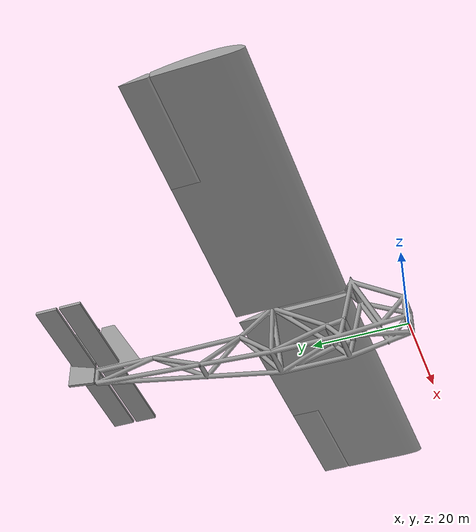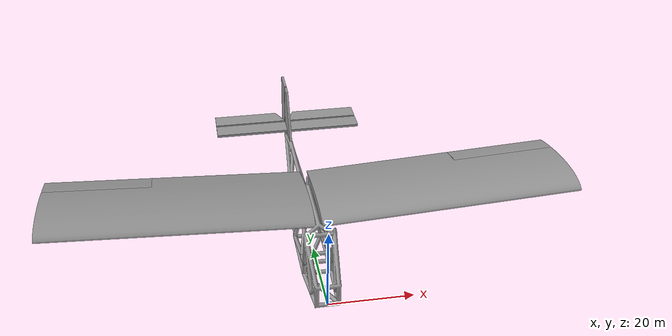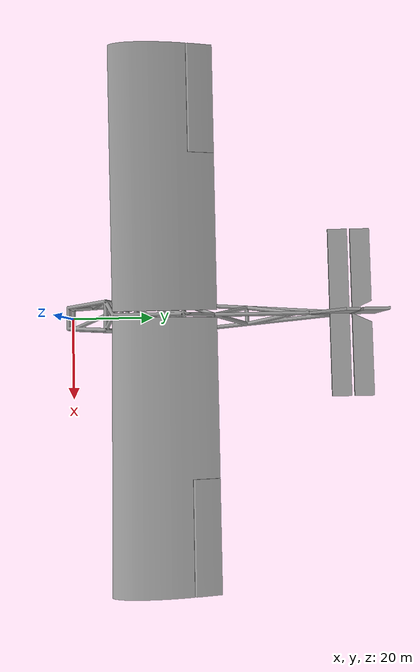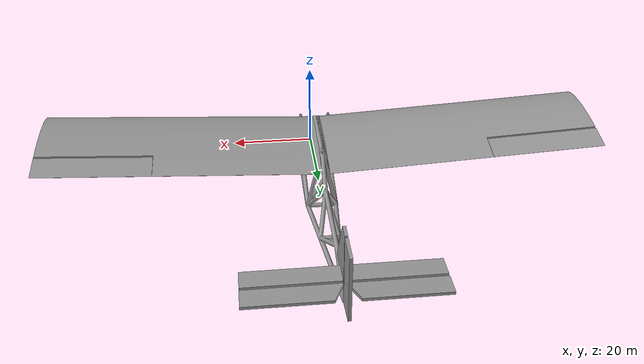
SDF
<?xml version='1.0'?>
<sdf version='1.7'>
  <model name='subscale_model'>
    <link name='fuselage'>
    <!--Clean up in future-->
      <inertial>
        <mass>2</mass>
        <inertia>
          <ixx>0.166667</ixx>
          <ixy>0</ixy>
          <ixz>0</ixz>
          <iyy>0.166667</iyy>
          <iyz>0</iyz>
          <izz>0.166667</izz>
        </inertia>
        <pose>0 0 0 0 -0 0</pose>
      </inertial>
      <pose>0.010625 -0.006549 0 0 -0 0</pose>
      <gravity>0</gravity>
      <self_collide>0</self_collide>
      <kinematic>0</kinematic>
      <enable_wind>0</enable_wind>
      <visual name='visual'>
        <pose>0 0 0 0 -0 0</pose>
        <geometry>
          <mesh>
            <uri>/home/harish/Downloads/FCA-Simulation-main/Stls/Fuselage (1).stl</uri>
            <scale>1 1 1</scale>
          </mesh>
        </geometry>
        <material>
          <lighting>1</lighting>
          <script>
            <uri>file://media/materials/scripts/gazebo.material</uri>
            <name>Gazebo/Grey</name>
          </script>
          <shader type='pixel'>
            <normal_map>__default__</normal_map>
          </shader>
          <ambient>0.3 0.3 0.3 1</ambient>
          <diffuse>0.7 0.7 0.7 1</diffuse>
          <specular>0.01 0.01 0.01 1</specular>.
          <emissive>0 0 0 1</emissive>
        </material>
        <transparency>0</transparency>
        <cast_shadows>1</cast_shadows>
      </visual>
      <collision name='collision'>
        <laser_retro>0</laser_retro>
        <max_contacts>10</max_contacts>
        <pose>0 0 0 0 -0 0</pose>
        <geometry>
          <mesh>
            <uri>/home/harish/Downloads/FCA-Simulation-main/Stls/Fuselage (1).stl</uri>
            <scale>1 1 1</scale>
          </mesh>
        </geometry>
        <surface>
          <friction>
            <ode>
              <mu>1</mu>
              <mu2>1</mu2>
              <fdir1>0 0 0</fdir1>
              <slip1>0</slip1>
              <slip2>0</slip2>
            </ode>
            <torsional>
              <coefficient>1</coefficient>
              <patch_radius>0</patch_radius>
              <surface_radius>0</surface_radius>
              <use_patch_radius>1</use_patch_radius>
              <ode>
                <slip>0</slip>
              </ode>
            </torsional>
          </friction>
          <bounce>
            <restitution_coefficient>0</restitution_coefficient>
            <threshold>1e+06</threshold>
          </bounce>
          <contact>
            <collide_without_contact>0</collide_without_contact>
            <collide_without_contact_bitmask>1</collide_without_contact_bitmask>
            <collide_bitmask>1</collide_bitmask>
            <ode>
              <soft_cfm>0</soft_cfm>
              <soft_erp>0.2</soft_erp>
              <kp>1e+13</kp>
              <kd>1</kd>
              <max_vel>0.01</max_vel>
              <min_depth>0</min_depth>
            </ode>
            <bullet>
              <split_impulse>1</split_impulse>
              <split_impulse_penetration_threshold>-0.01</split_impulse_penetration_threshold>
              <soft_cfm>0</soft_cfm>
              <soft_erp>0.2</soft_erp>
              <kp>1e+13</kp>
              <kd>1</kd>
            </bullet>
          </contact>
        </surface>
      </collision>
    </link>
    <link name='link_1'>
      <inertial>
        <mass>1</mass>
        <inertia>
          <ixx>0.166667</ixx>
          <ixy>0</ixy>
          <ixz>0</ixz>
          <iyy>0.166667</iyy>
          <iyz>0</iyz>
          <izz>0.166667</izz>
        </inertia>
      </inertial>
      <pose>-0.005356 0.001629 0 0 -0 0</pose>
      <visual name='visual'>
        <pose>0 0 0 0 -0 0</pose>
        <geometry>
          <mesh>
            <uri>/home/harish/Downloads/FCA-Simulation-main/Stls/Fuselage 1.stl</uri>
            <scale>1 1 1</scale>
          </mesh>
        </geometry>
        <material>
          <lighting>1</lighting>
          <script>
            <uri>file://media/materials/scripts/gazebo.material</uri>
            <name>Gazebo/Grey</name>
          </script>
          <shader type='pixel'/>
        </material>
        <transparency>0</transparency>
        <cast_shadows>1</cast_shadows>
      </visual>
      <collision name='collision'>
        <laser_retro>0</laser_retro>
        <max_contacts>10</max_contacts>
        <pose>0 0 0 0 -0 0</pose>
        <geometry>
          <mesh>
            <uri>/home/harish/Downloads/FCA-Simulation-main/Stls/Fuselage 1.stl</uri>
            <scale>1 1 1</scale>
          </mesh>
        </geometry>
        <surface>
          <friction>
            <ode>
              <mu>1</mu>
              <mu2>1</mu2>
              <fdir1>0 0 0</fdir1>
              <slip1>0</slip1>
              <slip2>0</slip2>
            </ode>
            <torsional>
              <coefficient>1</coefficient>
              <patch_radius>0</patch_radius>
              <surface_radius>0</surface_radius>
              <use_patch_radius>1</use_patch_radius>
              <ode>
                <slip>0</slip>
              </ode>
            </torsional>
          </friction>
          <bounce>
            <restitution_coefficient>0</restitution_coefficient>
            <threshold>1e+06</threshold>
          </bounce>
          <contact>
            <collide_without_contact>0</collide_without_contact>
            <collide_without_contact_bitmask>1</collide_without_contact_bitmask>
            <collide_bitmask>1</collide_bitmask>
            <ode>
              <soft_cfm>0</soft_cfm>
              <soft_erp>0.2</soft_erp>
              <kp>1e+13</kp>
              <kd>1</kd>
              <max_vel>0.01</max_vel>
              <min_depth>0</min_depth>
            </ode>
            <bullet>
              <split_impulse>1</split_impulse>
              <split_impulse_penetration_threshold>-0.01</split_impulse_penetration_threshold>
              <soft_cfm>0</soft_cfm>
              <soft_erp>0.2</soft_erp>
              <kp>1e+13</kp>
              <kd>1</kd>
            </bullet>
          </contact>
        </surface>
      </collision>
    </link>
    <link name='stabilizers'>
      <inertial>
        <mass>1</mass>
        <inertia>
          <ixx>0.166667</ixx>
          <ixy>0</ixy>
          <ixz>0</ixz>
          <iyy>0.166667</iyy>
          <iyz>0</iyz>
          <izz>0.166667</izz>
        </inertia>
      </inertial>
      <pose>-0.007465 -0.001724 0 0 -0 0</pose>
      <visual name='visual'>
        <pose>0 0 0 0 -0 0</pose>
        <geometry>
          <mesh>
            <uri>/home/harish/Downloads/FCA-Simulation-main/Stls/Stabalizers.stl</uri>
            <scale>1 1 1</scale>
          </mesh>
        </geometry>
        <material>
          <lighting>1</lighting>
          <script>
            <uri>file://media/materials/scripts/gazebo.material</uri>
            <name>Gazebo/Grey</name>
          </script>
          <shader type='pixel'/>
        </material>
        <transparency>0</transparency>
        <cast_shadows>1</cast_shadows>
      </visual>
      <collision name='collision'>
        <laser_retro>0</laser_retro>
        <max_contacts>10</max_contacts>
        <pose>0 0 0 0 -0 0</pose>
        <geometry>
          <mesh>
            <uri>/home/harish/Downloads/FCA-Simulation-main/Stls/Stabalizers.stl</uri>
            <scale>1 1 1</scale>
          </mesh>
        </geometry>
        <surface>
          <friction>
            <ode>
              <mu>1</mu>
              <mu2>1</mu2>
              <fdir1>0 0 0</fdir1>
              <slip1>0</slip1>
              <slip2>0</slip2>
            </ode>
            <torsional>
              <coefficient>1</coefficient>
              <patch_radius>0</patch_radius>
              <surface_radius>0</surface_radius>
              <use_patch_radius>1</use_patch_radius>
              <ode>
                <slip>0</slip>
              </ode>
            </torsional>
          </friction>
          <bounce>
            <restitution_coefficient>0</restitution_coefficient>
            <threshold>1e+06</threshold>
          </bounce>
          <contact>
            <collide_without_contact>0</collide_without_contact>
            <collide_without_contact_bitmask>1</collide_without_contact_bitmask>
            <collide_bitmask>1</collide_bitmask>
            <ode>
              <soft_cfm>0</soft_cfm>
              <soft_erp>0.2</soft_erp>
              <kp>1e+13</kp>
              <kd>1</kd>
              <max_vel>0.01</max_vel>
              <min_depth>0</min_depth>
            </ode>
            <bullet>
              <split_impulse>1</split_impulse>
              <split_impulse_penetration_threshold>-0.01</split_impulse_penetration_threshold>
              <soft_cfm>0</soft_cfm>
              <soft_erp>0.2</soft_erp>
              <kp>1e+13</kp>
              <kd>1</kd>
            </bullet>
          </contact>
        </surface>
      </collision>
    </link>
    <link name='link_2'>
      <inertial>
        <mass>1</mass>
        <inertia>
          <ixx>0.166667</ixx>
          <ixy>0</ixy>
          <ixz>0</ixz>
          <iyy>0.166667</iyy>
          <iyz>0</iyz>
          <izz>0.166667</izz>
        </inertia>
      </inertial>
      <pose>0.014581 -0.002539 0 0 -0 0</pose>
      <visual name='visual'>
        <pose>0 0 0 0 -0 0</pose>
        <geometry>
          <mesh>
            <uri>/home/harish/Downloads/FCA-Simulation-main/Stls/Fuselage 2.stl</uri>
            <scale>1 1 1</scale>
          </mesh>
        </geometry>
        <material>
          <lighting>1</lighting>
          <script>
            <uri>file://media/materials/scripts/gazebo.material</uri>
            <name>Gazebo/Grey</name>
          </script>
          <shader type='pixel'/>
        </material>
        <transparency>0</transparency>
        <cast_shadows>1</cast_shadows>
      </visual>
      <collision name='collision'>
        <laser_retro>0</laser_retro>
        <max_contacts>10</max_contacts>
        <pose>0 0 0 0 -0 0</pose>
        <geometry>
          <mesh>
            <uri>/home/harish/Downloads/FCA-Simulation-main/Stls/Fuselage 2.stl</uri>
            <scale>1 1 1</scale>
          </mesh>
        </geometry>
        <surface>
          <friction>
            <ode>
              <mu>1</mu>
              <mu2>1</mu2>
              <fdir1>0 0 0</fdir1>
              <slip1>0</slip1>
              <slip2>0</slip2>
            </ode>
            <torsional>
              <coefficient>1</coefficient>
              <patch_radius>0</patch_radius>
              <surface_radius>0</surface_radius>
              <use_patch_radius>1</use_patch_radius>
              <ode>
                <slip>0</slip>
              </ode>
            </torsional>
          </friction>
          <bounce>
            <restitution_coefficient>0</restitution_coefficient>
            <threshold>1e+06</threshold>
          </bounce>
          <contact>
            <collide_without_contact>0</collide_without_contact>
            <collide_without_contact_bitmask>1</collide_without_contact_bitmask>
            <collide_bitmask>1</collide_bitmask>
            <ode>
              <soft_cfm>0</soft_cfm>
              <soft_erp>0.2</soft_erp>
              <kp>1e+13</kp>
              <kd>1</kd>
              <max_vel>0.01</max_vel>
              <min_depth>0</min_depth>
            </ode>0
            <bullet>
              <split_impulse>1</split_impulse>
              <split_impulse_penetration_threshold>-0.01</split_impulse_penetration_threshold>
              <soft_cfm>0</soft_cfm>
              <soft_erp>0.2</soft_erp>
              <kp>1e+13</kp>
              <kd>1</kd>
            </bullet>
          </contact>
        </surface>
      </collision>
    </link>
    <link name='left_aileron'>
      <inertial>
        <mass>1</mass>
        <inertia>
          <ixx>0.166667</ixx>
          <ixy>0</ixy>
          <ixz>0</ixz>
          <iyy>0.166667</iyy>
          <iyz>0</iyz>
          <izz>0.166667</izz>
        </inertia>
      </inertial>
      <pose>0.001717 0.004642 0 0 -0 0</pose>
      <visual name='visual'>
        <pose>0 0 0 0 -0 0</pose>
        <geometry>
          <mesh>
            <uri>/home/harish/Downloads/FCA-Simulation-main/Stls/Left Aileron.stl</uri>
            <scale>1 1 1</scale>
          </mesh>
        </geometry>
        <material>
          <lighting>1</lighting>
          <script>
            <uri>file://media/materials/scripts/gazebo.material</uri>
            <name>Gazebo/Grey</name>
          </script>
          <shader type='pixel'/>
        </material>
        <transparency>0</transparency>
        <cast_shadows>1</cast_shadows>
      </visual>
      <collision name='collision'>
        <laser_retro>0</laser_retro>
        <max_contacts>10</max_contacts>
        <pose>0 0 0 0 -0 0</pose>
        <geometry>
          <mesh>
            <uri>/home/harish/Downloads/FCA-Simulation-main/Stls/Left Aileron.stl</uri>
            <scale>1 1 1</scale>
          </mesh>
        </geometry>
        <surface>
          <friction>
            <ode>
              <mu>1</mu>
              <mu2>1</mu2>
              <fdir1>0 0 0</fdir1>
              <slip1>0</slip1>
              <slip2>0</slip2>
            </ode>
            <torsional>
              <coefficient>1</coefficient>
              <patch_radius>0</patch_radius>
              <surface_radius>0</surface_radius>
              <use_patch_radius>1</use_patch_radius>
              <ode>
                <slip>0</slip>
              </ode>
            </torsional>
          </friction>
          <bounce>
            <restitution_coefficient>0</restitution_coefficient>
            <threshold>1e+06</threshold>
          </bounce>
          <contact>
            <collide_without_contact>0</collide_without_contact>
            <collide_without_contact_bitmask>1</collide_without_contact_bitmask>
            <collide_bitmask>1</collide_bitmask>
            <ode>
              <soft_cfm>0</soft_cfm>
              <soft_erp>0.2</soft_erp>
              <kp>1e+13</kp>
              <kd>1</kd>
              <max_vel>0.01</max_vel>
              <min_depth>0</min_depth>
            </ode>
            <bullet>
              <split_impulse>1</split_impulse>
              <split_impulse_penetration_threshold>-0.01</split_impulse_penetration_threshold>
              <soft_cfm>0</soft_cfm>
              <soft_erp>0.2</soft_erp>
              <kp>1e+13</kp>
              <kd>1</kd>
            </bullet>
          </contact>
        </surface>
      </collision>
    </link>
    <link name='left_elevator'>
      <inertial>
        <mass>1</mass>
        <inertia>
          <ixx>0.166667</ixx>
          <ixy>0</ixy>
          <ixz>0</ixz>
          <iyy>0.166667</iyy>
          <iyz>0</iyz>
          <izz>0.166667</izz>
        </inertia>
      </inertial>
      <pose>-0.011106 0.004567 0 0 -0 0</pose>
      <visual name='visual'>
        <pose>0 0 0 0 -0 0</pose>
        <geometry>
          <mesh>
            <uri>/home/harish/Downloads/FCA-Simulation-main/Stls/Left Elevator.stl</uri>
            <scale>1 1 1</scale>
          </mesh>
        </geometry>
        <material>
          <lighting>1</lighting>
          <script>
            <uri>file://media/materials/scripts/gazebo.material</uri>
            <name>Gazebo/Grey</name>
          </script>
          <shader type='pixel'/>
        </material>
        <transparency>0</transparency>
        <cast_shadows>1</cast_shadows>
      </visual>
      <collision name='collision'>
        <laser_retro>0</laser_retro>
        <max_contacts>10</max_contacts>
        <pose>0 0 0 0 -0 0</pose>
        <geometry>
          <mesh>
            <uri>/home/harish/Downloads/FCA-Simulation-main/Stls/Left Elevator.stl</uri>
            <scale>1 1 1</scale>
          </mesh>
        </geometry>
        <surface>
          <friction>
            <ode>
              <mu>1</mu>
              <mu2>1</mu2>
              <fdir1>0 0 0</fdir1>
              <slip1>0</slip1>
              <slip2>0</slip2>
            </ode>
            <torsional>
              <coefficient>1</coefficient>
              <patch_radius>0</patch_radius>
              <surface_radius>0</surface_radius>
              <use_patch_radius>1</use_patch_radius>
              <ode>
                <slip>0</slip>
              </ode>
            </torsional>
          </friction>
          <bounce>
            <restitution_coefficient>0</restitution_coefficient>
            <threshold>1e+06</threshold>
          </bounce>
          <contact>
            <collide_without_contact>0</collide_without_contact>
            <collide_without_contact_bitmask>1</collide_without_contact_bitmask>
            <collide_bitmask>1</collide_bitmask>
            <ode>
              <soft_cfm>0</soft_cfm>
              <soft_erp>0.2</soft_erp>
              <kp>1e+13</kp>
              <kd>1</kd>
              <max_vel>0.01</max_vel>
              <min_depth>0</min_depth>
            </ode>
            <bullet>
              <split_impulse>1</split_impulse>
              <split_impulse_penetration_threshold>-0.01</split_impulse_penetration_threshold>
              <soft_cfm>0</soft_cfm>
              <soft_erp>0.2</soft_erp>
              <kp>1e+13</kp>
              <kd>1</kd>
            </bullet>
          </contact>
        </surface>
      </collision>
    </link>
    <link name='left_wing'>
      <inertial>
        <mass>1</mass>
        <inertia>
          <ixx>0.166667</ixx>
          <ixy>0</ixy>
          <ixz>0</ixz>
          <iyy>0.166667</iyy>
          <iyz>0</iyz>
          <izz>0.166667</izz>
        </inertia>
      </inertial>
      <pose>-0.002431 0.000506 0 0 -0 0</pose>
      <visual name='visual'>
        <pose>0 0 0 0 -0 0</pose>
        <geometry>
          <mesh>
            <uri>/home/harish/Downloads/FCA-Simulation-main/Stls/Left Wing.stl</uri>
            <scale>1 1 1</scale>
          </mesh>
        </geometry>
        <material>
          <lighting>1</lighting>
          <script>
            <uri>file://media/materials/scripts/gazebo.material</uri>
            <name>Gazebo/Grey</name>
          </script>
          <shader type='pixel'/>
        </material>
        <transparency>0</transparency>
        <cast_shadows>1</cast_shadows>
      </visual>
      <collision name='collision'>
        <laser_retro>0</laser_retro>
        <max_contacts>10</max_contacts>
        <pose>0 0 0 0 -0 0</pose>
        <geometry>
          <mesh>
            <uri>/home/harish/Downloads/FCA-Simulation-main/Stls/Left Wing.stl</uri>
            <scale>1 1 1</scale>
          </mesh>
        </geometry>
        <surface>
          <friction>
            <ode>
              <mu>1</mu>
              <mu2>1</mu2>
              <fdir1>0 0 0</fdir1>
              <slip1>0</slip1>
              <slip2>0</slip2>
            </ode>
            <torsional>
              <coefficient>1</coefficient>
              <patch_radius>0</patch_radius>
              <surface_radius>0</surface_radius>
              <use_patch_radius>1</use_patch_radius>
              <ode>
                <slip>0</slip>
              </ode>
            </torsional>
          </friction>
          <bounce>
            <restitution_coefficient>0</restitution_coefficient>
            <threshold>1e+06</threshold>
          </bounce>
          <contact>
            <collide_without_contact>0</collide_without_contact>
            <collide_without_contact_bitmask>1</collide_without_contact_bitmask>
            <collide_bitmask>1</collide_bitmask>
            <ode>
              <soft_cfm>0</soft_cfm>
              <soft_erp>0.2</soft_erp>
              <kp>1e+13</kp>
              <kd>1</kd>
              <max_vel>0.01</max_vel>
              <min_depth>0</min_depth>
            </ode>
            <bullet>
              <split_impulse>1</split_impulse>
              <split_impulse_penetration_threshold>-0.01</split_impulse_penetration_threshold>
              <soft_cfm>0</soft_cfm>
              <soft_erp>0.2</soft_erp>
              <kp>1e+13</kp>
              <kd>1</kd>
            </bullet>
          </contact>
        </surface>
      </collision>
    </link>
    <link name='right_aileron'>
      <inertial>
        <mass>1</mass>
        <inertia>
          <ixx>0.166667</ixx>
          <ixy>0</ixy>
          <ixz>0</ixz>
          <iyy>0.166667</iyy>
          <iyz>0</iyz>
          <izz>0.166667</izz>
        </inertia>
      </inertial>
      <pose>-0.000807 -0.000738 0 0 -0 0</pose>
      <visual name='visual'>
        <pose>0 0 0 0 -0 0</pose>
        <geometry>
          <mesh>
            <uri>/home/harish/Downloads/FCA-Simulation-main/Stls/Right Aileron.stl</uri>
            <scale>1 1 1</scale>
          </mesh>
        </geometry>
        <material>
          <lighting>1</lighting>
          <script>
            <uri>file://media/materials/scripts/gazebo.material</uri>
            <name>Gazebo/Grey</name>
          </script>
          <shader type='pixel'/>
        </material>
        <transparency>0</transparency>
        <cast_shadows>1</cast_shadows>
      </visual>
      <collision name='collision'>
        <laser_retro>0</laser_retro>
        <max_contacts>10</max_contacts>
        <pose>0 0 0 0 -0 0</pose>
        <geometry>
          <mesh>
            <uri>/home/harish/Downloads/FCA-Simulation-main/Stls/Right Aileron.stl</uri>
            <scale>1 1 1</scale>
          </mesh>
        </geometry>
        <surface>
          <friction>
            <ode>0.
              <mu>1</mu>
              <mu2>1</mu2>
              <fdir1>0 0 0</fdir1>0
              <slip1>0</slip1>
              <slip2>0</slip2>
            </ode>
            <torsional>
              <coefficient>1</coefficient>
              <patch_radius>0</patch_radius>
              <surface_radius>0</surface_radius>
              <use_patch_radius>1</use_patch_radius>
              <ode>
                <slip>0</slip>
              </ode>
            </torsional>
          </friction>
          <bounce>
            <restitution_coefficient>0</restitution_coefficient>
            <threshold>1e+06</threshold>
          </bounce>
          <contact>
            <collide_without_contact>0</collide_without_contact>
            <collide_without_contact_bitmask>1</collide_without_contact_bitmask>
            <collide_bitmask>1</collide_bitmask>
            <ode>
              <soft_cfm>0</soft_cfm>
              <soft_erp>0.2</soft_erp>
              <kp>1e+13</kp>
              <kd>1</kd>
              <max_vel>0.01</max_vel>
              <min_depth>0</min_depth>
            </ode>
            <bullet>
              <split_impulse>1</split_impulse>
              <split_impulse_penetration_threshold>-0.01</split_impulse_penetration_threshold>
              <soft_cfm>0</soft_cfm>
              <soft_erp>0.2</soft_erp>
              <kp>1e+13</kp>
              <kd>1</kd>
            </bullet>
          </contact>
        </surface>
      </collision>
    </link>
    <link name='right_elevator'>
      <inertial>
        <mass>1</mass>
        <inertia>
          <ixx>0.166667</ixx>
          <ixy>0</ixy>
          <ixz>0</ixz>
          <iyy>0.166667</iyy>
          <iyz>0</iyz>
          <izz>0.166667</izz>
        </inertia>
      </inertial>
      <pose>-0.005405 -0.001289 0 0 -0 0</pose>
      <visual name='visual'>
        <pose>0 0 0 0 -0 0</pose>
        <geometry>
          <mesh>
            <uri>/home/harish/Downloads/FCA-Simulation-main/Stls/Right Elevator.stl</uri>
            <scale>1 1 1</scale>
          </mesh>
        </geometry>
        <material>
          <lighting>1</lighting>
          <script>
            <uri>file://media/materials/scripts/gazebo.material</uri>
            <name>Gazebo/Grey</name>
          </script>
          <shader type='pixel'/>
        </material>
        <transparency>0</transparency>
        <cast_shadows>1</cast_shadows>
      </visual>
      <collision name='collision'>
        <laser_retro>0</laser_retro>
        <max_contacts>10</max_contacts>
        <pose>0 0 0 0 -0 0</pose>
        <geometry>
          <mesh>
            <uri>/home/harish/Downloads/FCA-Simulation-main/Stls/Right Elevator.stl</uri>
            <scale>1 1 1</scale>
          </mesh>
        </geometry>
        <surface>
          <friction>
            <ode>
              <mu>1</mu>
              <mu2>1</mu2>
              <fdir1>0 0 0</fdir1>
              <slip1>0</slip1>
              <slip2>0</slip2>
            </ode>
            <torsional>
              <coefficient>1</coefficient>
              <patch_radius>0</patch_radius>
              <surface_radius>0</surface_radius>
              <use_patch_radius>1</use_patch_radius>
              <ode>
                <slip>0</slip>
              </ode>
            </torsional>
          </friction>
          <bounce>
            <restitution_coefficient>0</restitution_coefficient>
            <threshold>1e+06</threshold>
          </bounce>
          <contact>
            <collide_without_contact>0</collide_without_contact>
            <collide_without_contact_bitmask>1</collide_without_contact_bitmask>
            <collide_bitmask>1</collide_bitmask>
            <ode>
              <soft_cfm>0</soft_cfm>
              <soft_erp>0.2</soft_erp>
              <kp>1e+13</kp>
              <kd>1</kd>
              <max_vel>0.01</max_vel>
              <min_depth>0</min_depth>
            </ode>
            <bullet>
              <split_impulse>1</split_impulse>
              <split_impulse_penetration_threshold>-0.01</split_impulse_penetration_threshold>
              <soft_cfm>0</soft_cfm>
              <soft_erp>0.2</soft_erp>
              <kp>1e+13</kp>
              <kd>1</kd>
            </bullet>
          </contact>
        </surface>
      </collision>
    </link>
    <link name='right_wing'>
      <inertial>
        <mass>1</mass>
        <inertia>
          <ixx>0.166667</ixx>
          <ixy>0</ixy>
          <ixz>0</ixz>
          <iyy>0.166667</iyy>
          <iyz>0</iyz>
          <izz>0.166667</izz>
        </inertia>
      </inertial>
      <pose>-0.009494 0.005806 0 0 -0 0</pose>
      <visual name='visual'>
        <pose>0 0 0 0 -0 0</pose>
        <geometry>
          <mesh>
            <uri>/home/harish/Downloads/FCA-Simulation-main/Stls/Right Wing.stl</uri>
            <scale>1 1 1</scale>
          </mesh>
        </geometry>
        <material>
          <lighting>1</lighting>
          <script>
            <uri>file://media/materials/scripts/gazebo.material</uri>
            <name>Gazebo/Grey</name>
          </script>
          <shader type='pixel'/>
        </material>
        <transparency>0</transparency>
        <cast_shadows>1</cast_shadows>
      </visual>
      <collision name='collision'>
        <laser_retro>0</laser_retro>
        <max_contacts>10</max_contacts>
        <pose>0 0 0 0 -0 0</pose>
        <geometry>
          <mesh>
            <uri>/home/harish/Downloads/FCA-Simulation-main/Stls/Right Wing.stl</uri>
            <scale>1 1 1</scale>
          </mesh>
        </geometry>
        <surface>
          <friction>
            <ode>
              <mu>1</mu>
              <mu2>1</mu2>
              <fdir1>0 0 0</fdir1>
              <slip1>0</slip1>
              <slip2>0</slip2>
            </ode>
            <torsional>
              <coefficient>1</coefficient>
              <patch_radius>0</patch_radius>
              <surface_radius>0</surface_radius>
              <use_patch_radius>1</use_patch_radius>
              <ode>
                <slip>0</slip>
              </ode>
            </torsional>
          </friction>
          <bounce>
            <restitution_coefficient>0</restitution_coefficient>
            <threshold>1e+06</threshold>
          </bounce>
          <contact>
            <collide_without_contact>0</collide_without_contact>
            <collide_without_contact_bitmask>1</collide_without_contact_bitmask>
            <collide_bitmask>1</collide_bitmask>
            <ode>
              <soft_cfm>0</soft_cfm>
              <soft_erp>0.2</soft_erp>
              <kp>1e+13</kp>
              <kd>1</kd>
              <max_vel>0.01</max_vel>
              <min_depth>0</min_depth>
            </ode>
            <bullet>
              <split_impulse>1</split_impulse>
              <split_impulse_penetration_threshold>-0.01</split_impulse_penetration_threshold>
              <soft_cfm>0</soft_cfm>
              <soft_erp>0.2</soft_erp>
              <kp>1e+13</kp>
              <kd>1</kd>
            </bullet>
          </contact>
        </surface>
      </collision>
    </link>
    <link name='rudder'>
      <inertial>
        <mass>1</mass>
        <inertia>
          <ixx>0.166667</ixx>
          <ixy>0</ixy>
          <ixz>0</ixz>
          <iyy>0.166667</iyy>
          <iyz>0</iyz>
          <izz>0.166667</izz>
        </inertia>
      </inertial>
      <pose>0.015142 -0.00431 0 0 -0 0</pose>
      <visual name='visual'>
        <pose>0 0 0 0 -0 0</pose>
        <geometry>
          <mesh>
            <uri>/home/harish/Downloads/FCA-Simulation-main/Stls/Rudder.stl</uri>
            <scale>1 1 1</scale>
          </mesh>
        </geometry>
        <material>
          <lighting>1</lighting>
          <script>
            <uri>file://media/materials/scripts/gazebo.material</uri>
            <name>Gazebo/Grey</name>
          </script>
          <shader type='pixel'/>
        </material>
        <transparency>0</transparency>00
        <cast_shadows>1</cast_shadows>
      </visual>
      <collision name='collision'>
        <laser_retro>0</laser_retro>
        <max_contacts>10</max_contacts>
        <pose>0 0 0 0 -0 0</pose>
        <geometry>
          <mesh>
            <uri>/home/harish/Downloads/FCA-Simulation-main/Stls/Rudder.stl</uri>
            <scale>1 1 1</scale>
          </mesh>
        </geometry>
        <surface>
          <friction>
            <ode>
              <mu>1</mu>
              <mu2>1</mu2>
              <fdir1>0 0 0</fdir1>
              <slip1>0</slip1>
              <slip2>0</slip2>
            </ode>
            <torsional>
              <coefficient>1</coefficient>
              <patch_radius>0</patch_radius>
              <surface_radius>0</surface_radius>
              <use_patch_radius>1</use_patch_radius>
              <ode>
                <slip>0</slip>
              </ode>
            </torsional>
          </friction>
          <bounce>
            <restitution_coefficient>0</restitution_coefficient>
            <threshold>1e+06</threshold>
          </bounce>
          <contact>
            <collide_without_contact>0</collide_without_contact>
            <collide_without_contact_bitmask>1</collide_without_contact_bitmask>
            <collide_bitmask>1</collide_bitmask>
            <ode>
              <soft_cfm>0</soft_cfm>
              <soft_erp>0.2</soft_erp>
              <kp>1e+13</kp>
              <kd>1</kd>
              <max_vel>0.01</max_vel>
              <min_depth>0</min_depth>
            </ode>
            <bullet>
              <split_impulse>1</split_impulse>
              <split_impulse_penetration_threshold>-0.01</split_impulse_penetration_threshold>
              <soft_cfm>0</soft_cfm>
              <soft_erp>0.2</soft_erp>
              <kp>1e+13</kp>
              <kd>1</kd>
            </bullet>
          </contact>
        </surface>
      </collision>
    </link>

    <!--Joint for Left Aileron-->
    <joint name='left_aileron_joint' type = 'revolute'>
      <parent>left_wing</parent>
      <child>left_aileron</child>
      <pose>0.001717 0.004642 0 0 -0 0</pose> <!--TODO-->
      <axis>
        <xyz>0 1 0</xyz>
        <limit>
          <lower>-0.26</lower>
          <upper>0.35</upper>
          <velocity>1</velocity> <!--Max velocity/effort? Also is effort similar to torqe or-->
          <effort>1</effort>
        </limit>
      </axis>
    </joint>

    <!--Joint for Right Aileron-->
    <joint name='right_aileron_joint' type = 'revolute'>
      <parent>right_wing</parent>
      <child>right_aileron</child>
      <pose>-0.000807 -0.000738 0 0 -0 0</pose> <!--TODO-->
      <axis>
        <xyz>0 1 0</xyz>
        <limit>
          <lower>-0.26</lower>
          <upper>0.35</upper>
          <velocity>1</velocity>
          <effort>1</effort>
        </limit>
      </axis>
    </joint>

    <!--Joint for Right Elevator-->
    <joint name='right_elevator_joint' type = 'revolute'>
      <parent>stabilizers</parent>
      <child>right_elevator</child>
      <pose>-0.005405 -0.001289 0 0 -0 0</pose> <!--TODO-->
      <axis>00
        <xyz>0 1 0</xyz>
        <limit>
          <lower>-0.26</lower>00
          <upper>0.35</upper>
          <velocity>1</velocity>
          <effort>1</effort>
        </limit>
      </axis>
    </joint>

    <joint name='body1' type = 'fixed'>
      <parent>fuselage</parent>
      <child>link_1</child>
    </joint>

    <joint name='body2' type = 'fixed'>
      <parent>fuselage</parent>
      <child>link_2</child>
    </joint>

    <joint name='body3' type = 'fixed'>
      <parent>fuselage</parent>
      <child>right_wing</child>
    </joint>

    <joint name='body4' type = 'fixed'>
      <parent>fuselage</parent>
      <child>left_wing</child>
    </joint>

    <joint name='body5' type = 'fixed'>
      <parent>fuselage</parent>
      <child>stabilizers</child>
    </joint>

    <!--Joint for Right Elevator-->
    <joint name='left_elevator_joint' type = 'revolute'>
      <parent>stabilizers</parent>
      <child>left_elevator</child>
      <pose>-0.011106 0.004567 0 0 -0 0</pose> <!--TODO-where's the joint gonna be -->
      <axis>
        <xyz>0 1 0</xyz>
        <limit>
          <lower>-0.26</lower>
          <upper>0.35</upper>
          <velocity>1</velocity>
          <effort>78.177</effort>
        </limit>
      </axis>
    </joint>

    <!--Joint for Rudder-->
    <joint name='rudder_joint' type = 'revolute'>
      <parent>stabilizers</parent>
      <child>rudder</child>
      <pose>0.015142 -0.00431 0 0 -0 0</pose> <!--TODO-->
      <axis>
        <xyz>0 0 1</xyz>
        <limit>
          <lower>-0.26</lower>
          <upper>0.35</upper>
          <velocity>1</velocity>
          <effort>1</effort>
        </limit>
      </axis>
    </joint>

    <static>0</static>
    <allow_auto_disable>1</allow_auto_disable>
  </model>
</sdf>
